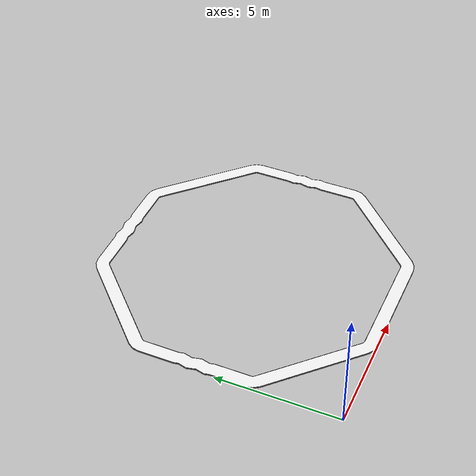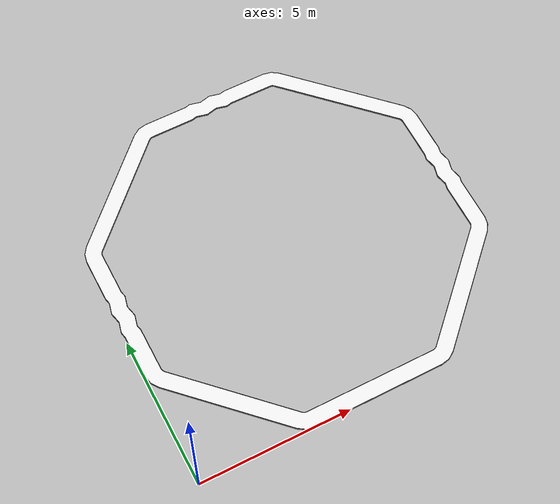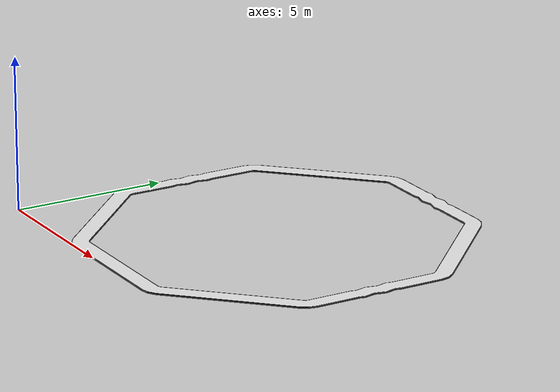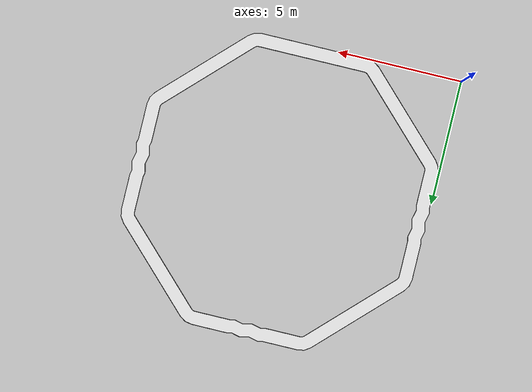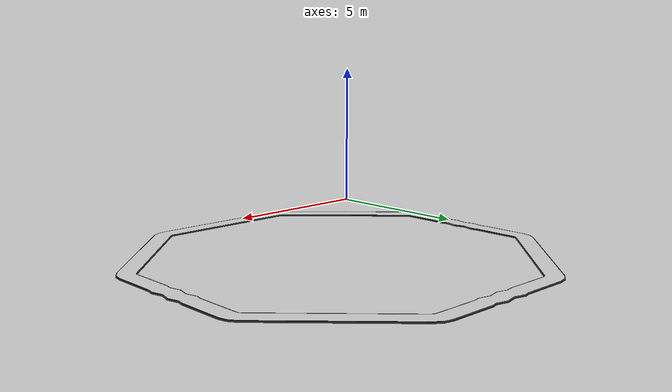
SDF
<?xml version="1.0" ?>
<sdf version="1.5">
  <model name='nxp_raceway'>
    <pose>0 0 0 0 0 0</pose>
    <link name='nxp_raceway_link'>
      <visual name='nxp_raceway_inside_visual'>
        <cast_shadows>0</cast_shadows>
        <pose>0 0 -.008 0 0 0</pose>
        <geometry>
          <mesh>
            <scale>1 1 1</scale>
            <uri>model://nxp_raceway_octagon/meshes/CourseOctaSwingInside.stl</uri>
          </mesh>
        </geometry>
        <material>
          <script>
            <name>Gazebo/White</name>
            <uri>file://media/materials/scripts/gazebo.material</uri>
          </script>
        </material>
      </visual>
      <visual name='nxp_raceway_border_visual'>
        <cast_shadows>0</cast_shadows>
        <pose>-.02 -.02 -.008 0 0 0</pose>
        <geometry>
          <mesh>
            <scale>1 1 1</scale>
            <uri>model://nxp_raceway_octagon/meshes/CourseOctaSwingBorder.stl</uri>
          </mesh>
        </geometry>
        <material>
          <script>
            <name>Gazebo/Black</name>
            <uri>file://media/materials/scripts/gazebo.material</uri>
          </script>
        </material>
      </visual>
    </link>
    <static>1</static>
  </model>
</sdf>
